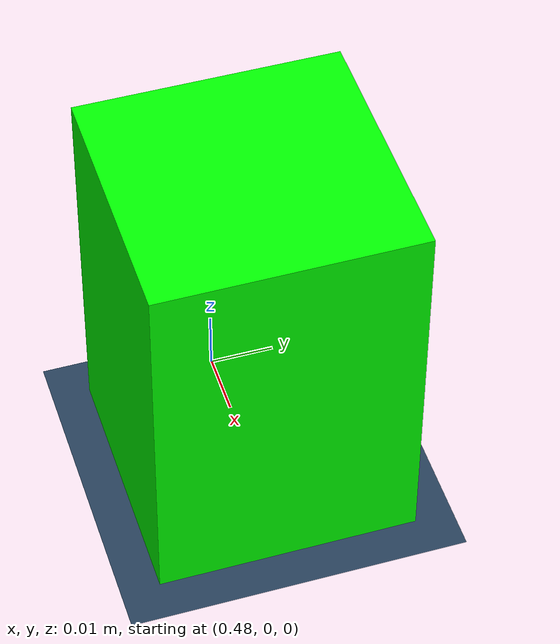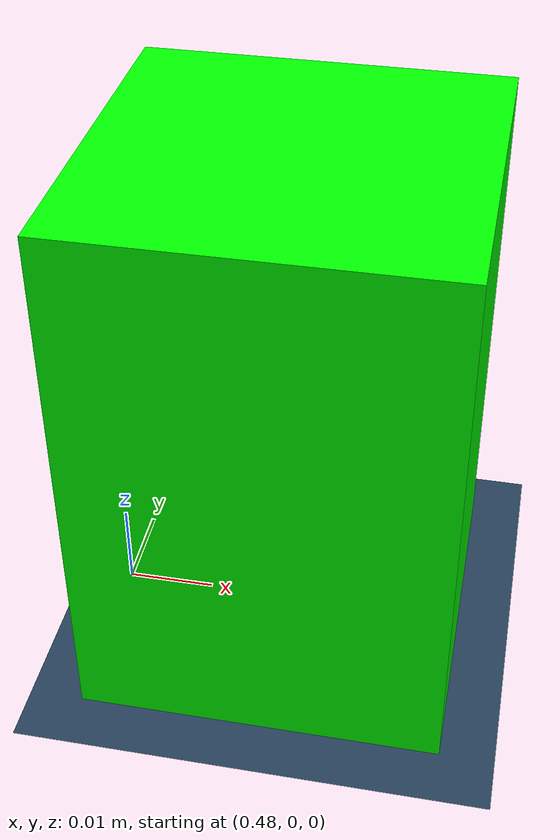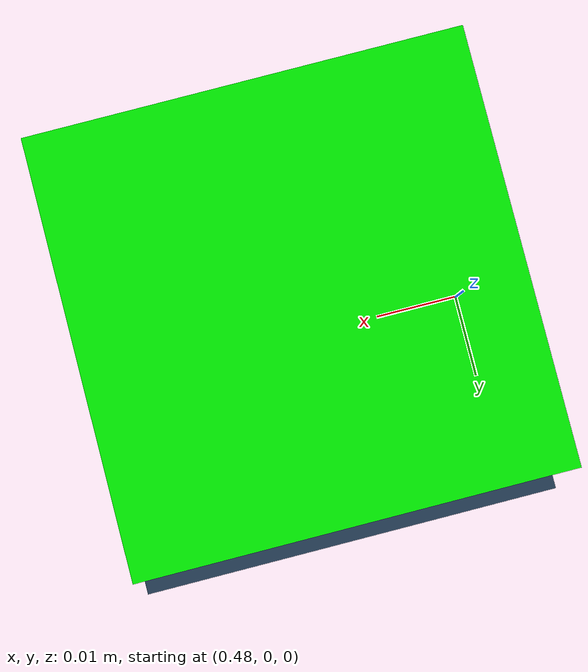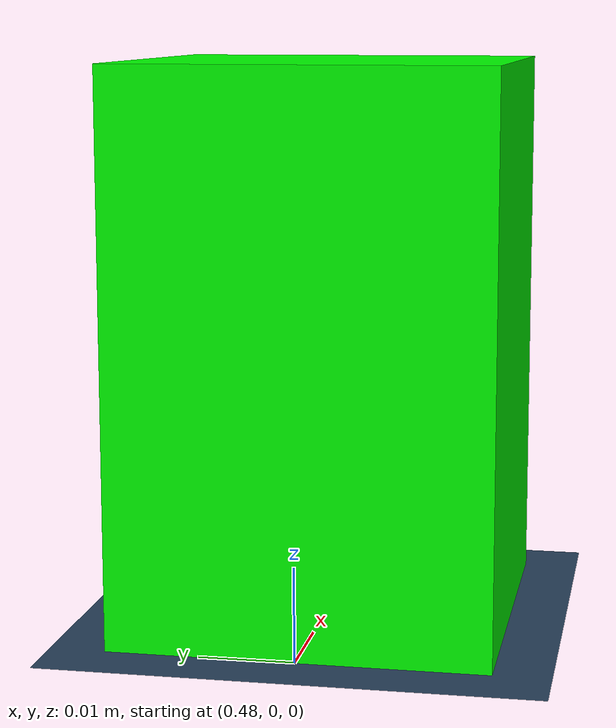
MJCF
<mujoco model="panda scene">
    <compiler angle="radian" autolimits="true"/>

    <option timestep="0.005" iterations="5" ls_iterations="8" integrator="implicitfast">
        <flag eulerdamp="disable"/>
    </option>

    <custom>
        <numeric data="12" name="max_contact_points"/>
    </custom>

    <visual>
        <headlight diffuse="0.6 0.6 0.6" ambient="0.3 0.3 0.3" specular="0 0 0"/>
        <rgba haze="0.15 0.25 0.35 1"/>
        <global azimuth="120" elevation="-20"/>
        <scale contactwidth="0.075" contactheight="0.025" forcewidth="0.05" com="0.05" framewidth="0.01"
               framelength="0.2"/>
    </visual>

    <asset>
        <texture type="skybox" builtin="gradient" rgb1="0.3 0.5 0.7" rgb2="0 0 0" width="512" height="3072"/>
        <texture type="2d" name="groundplane" builtin="checker" mark="edge" rgb1="0.2 0.3 0.4" rgb2="0.1 0.2 0.3"
                 markrgb="0.8 0.8 0.8" width="300" height="300"/>
        <material name="groundplane" texture="groundplane" texuniform="true" texrepeat="5 5" reflectance="0.2"/>
    </asset>

    <worldbody>
        <light pos="0 0 1.5" dir="0 0 -1" directional="true"/>
        <geom name="floor" size="0 0 0.05" type="plane" material="groundplane" contype="1"/>
    </worldbody>

    <worldbody>
        <body name="box" pos="0.5 0 0.03">
            <freejoint/>
            <geom type="box" name="box" size="0.02 0.02 0.03" condim="3"
                  friction="1 .03 .003" rgba="0 1 0 1" contype="2" conaffinity="1" solref="0.01 1"/>
        </body>
    </worldbody>
</mujoco>
